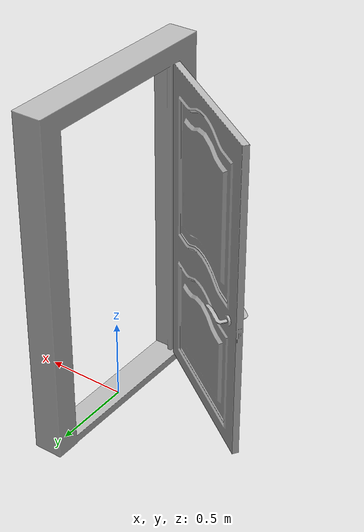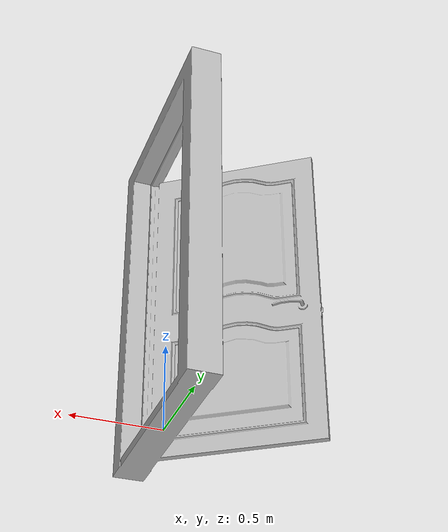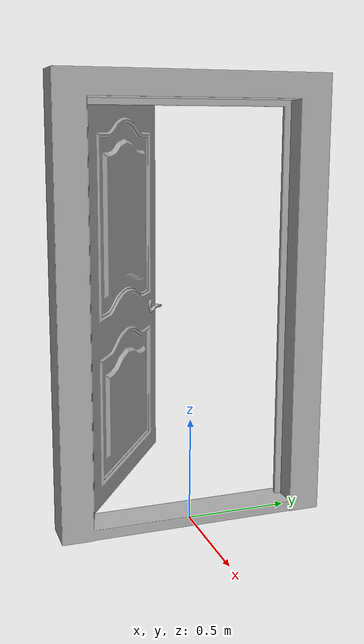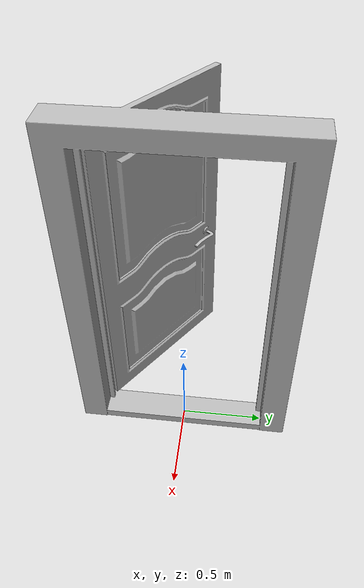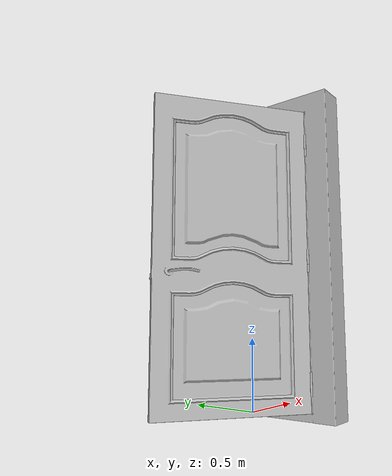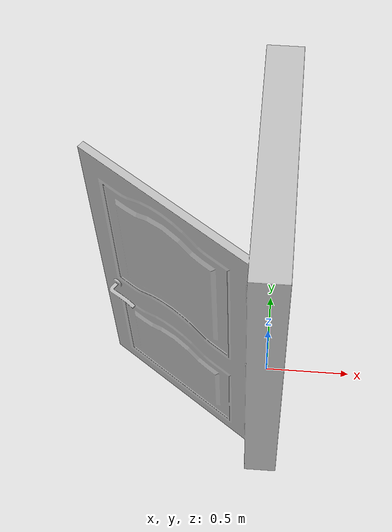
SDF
<?xml version='1.0'?>
<sdf version='1.4'>
  <model name='73'>
    <pose>0 0 0 0 0 0</pose>
    <static>true</static>
    <link name='link'>
      <collision name='collision'>
        <pose>0 0 0 0 0 0</pose>
        <geometry>
          <box>
            <size>1.0004 1.30004 2</size>
          </box>
        </geometry>
      </collision>
      <visual name='visual'>
        <pose>0 0 0 0 0 0</pose>
        <geometry>
          <mesh><uri>model://73/73.dae</uri></mesh>
        </geometry>
      </visual>
    </link>
  </model>
</sdf>
